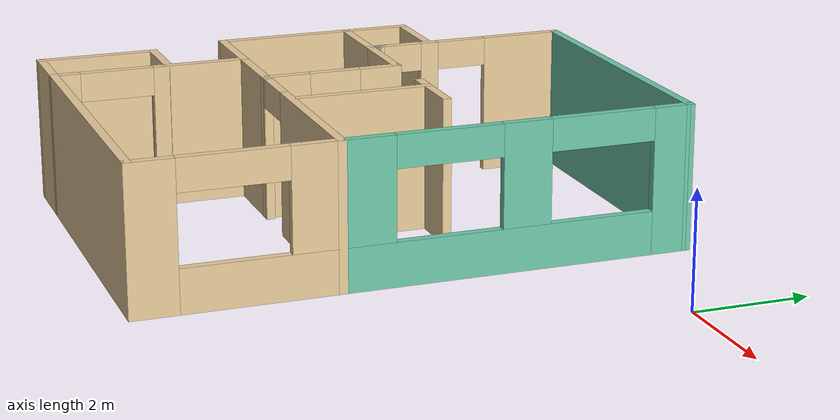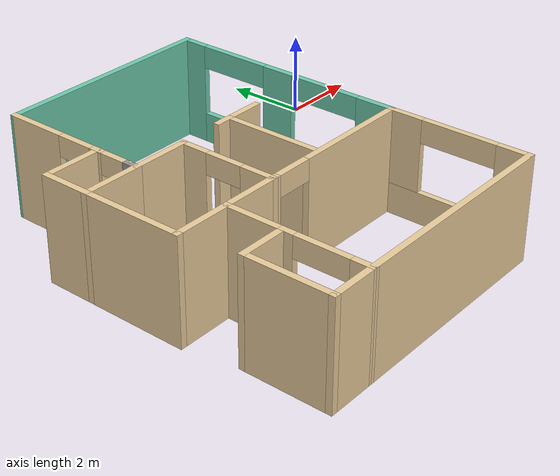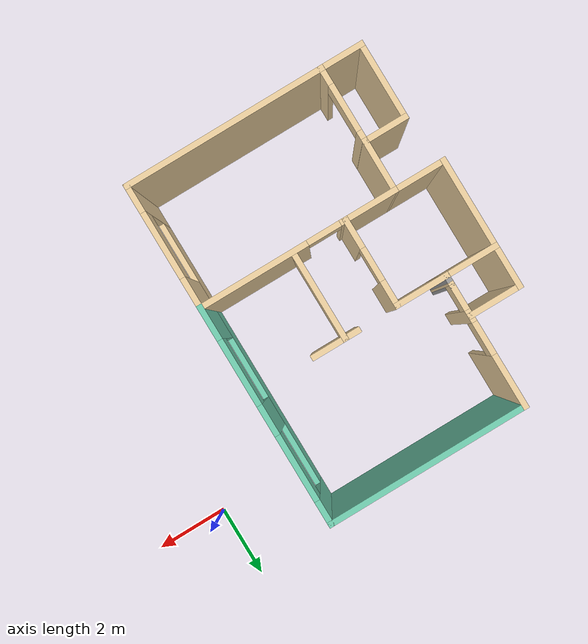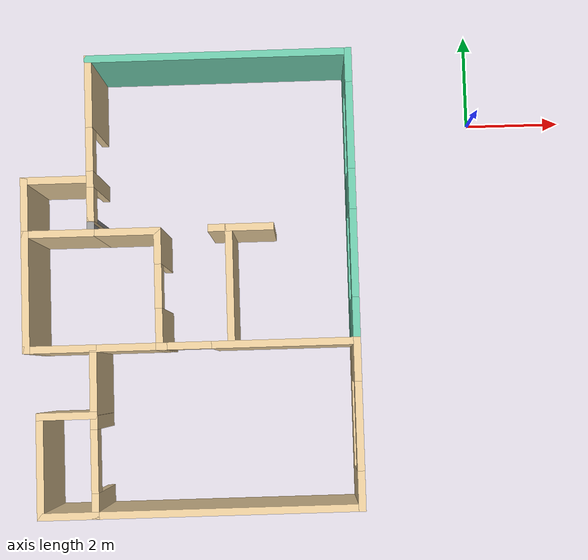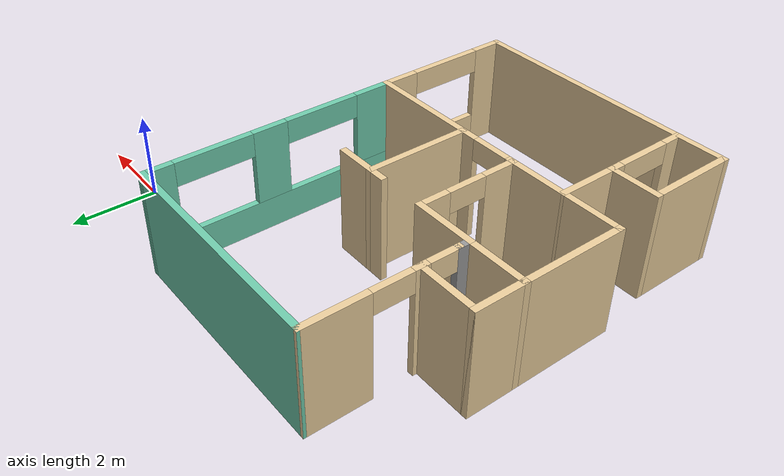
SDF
<?xml version='1.0'?>
<sdf version='1.6'>
  <model name='apt_1br'>
    <pose frame=''>-6.01929 -3.4268 0 0 -0 0</pose>
    <link name='Wall_10'>
      <collision name='Wall_10_Collision'>
        <geometry>
          <box>
            <size>5.5 0.15 2.5</size>
          </box>
        </geometry>
        <pose frame=''>0 0 1.25 0 -0 0</pose>
      </collision>
      <visual name='Wall_10_Visual'>
        <pose frame=''>0 0 1.25 0 -0 0</pose>
        <geometry>
          <box>
            <size>5.5 0.15 2.5</size>
          </box>
        </geometry>
        <material>
          <script>
            <uri>file://media/materials/scripts/gazebo.material</uri>
            <name>Gazebo/Grey</name>
          </script>
          <ambient>0.921569 0.807843 0.615686 1</ambient>
        </material>
        <meta>
          <layer>0</layer>
        </meta>
      </visual>
      <pose frame=''>0.674919 -4.65002 0 0 -0 3.14159</pose>
    </link>
    <link name='Wall_21'>
      <collision name='Wall_21_Collision'>
        <geometry>
          <box>
            <size>1.5 0.15 2.5</size>
          </box>
        </geometry>
        <pose frame=''>0 0 1.25 0 -0 0</pose>
      </collision>
      <visual name='Wall_21_Visual'>
        <pose frame=''>0 0 1.25 0 -0 0</pose>
        <geometry>
          <box>
            <size>1.5 0.15 2.5</size>
          </box>
        </geometry>
        <material>
          <script>
            <uri>file://media/materials/scripts/gazebo.material</uri>
            <name>Gazebo/Grey</name>
          </script>
          <ambient>0.921569 0.807843 0.615686 1</ambient>
        </material>
        <meta>
          <layer>0</layer>
        </meta>
      </visual>
      <pose frame=''>-1.32508 1.04998 0 0 -0 3.14159</pose>
    </link>
    <link name='Wall_29'>
      <pose frame=''>3.34992 1.67498 0 0 -0 -1.5708</pose>
      <visual name='Wall_29_Visual_0'>
        <pose frame=''>-2.69448 0 1.25 0 -0 0</pose>
        <geometry>
          <box>
            <size>0.71105 0.15 2.5</size>
          </box>
        </geometry>
        <material>
          <script>
            <uri>file://media/materials/scripts/gazebo.material</uri>
            <name>Gazebo/Grey</name>
          </script>
          <ambient>0.435294 0.796078 0.67451 1</ambient>
        </material>
        <meta>
          <layer>0</layer>
        </meta>
      </visual>
      <collision name='Wall_29_Collision_0'>
        <geometry>
          <box>
            <size>0.71105 0.15 2.5</size>
          </box>
        </geometry>
        <pose frame=''>-2.69448 0 1.25 0 -0 0</pose>
      </collision>
      <visual name='Wall_29_Visual_1'>
        <pose frame=''>0.355525 0 0.375 0 -0 0</pose>
        <geometry>
          <box>
            <size>5.38895 0.15 0.75</size>
          </box>
        </geometry>
        <material>
          <script>
            <uri>file://media/materials/scripts/gazebo.material</uri>
            <name>Gazebo/Grey</name>
          </script>
          <ambient>0.435294 0.796078 0.67451 1</ambient>
        </material>
        <meta>
          <layer>0</layer>
        </meta>
      </visual>
      <collision name='Wall_29_Collision_1'>
        <geometry>
          <box>
            <size>5.38895 0.15 0.75</size>
          </box>
        </geometry>
        <pose frame=''>0.355525 0 0.375 0 -0 0</pose>
      </collision>
      <visual name='Wall_29_Visual_2'>
        <pose frame=''>-0.124805 0 1.625 0 -0 0</pose>
        <geometry>
          <box>
            <size>0.82829 0.15 1.75</size>
          </box>
        </geometry>
        <material>
          <script>
            <uri>file://media/materials/scripts/gazebo.material</uri>
            <name>Gazebo/Grey</name>
          </script>
          <ambient>0.435294 0.796078 0.67451 1</ambient>
        </material>
        <meta>
          <layer>0</layer>
        </meta>
      </visual>
      <collision name='Wall_29_Collision_2'>
        <geometry>
          <box>
            <size>0.82829 0.15 1.75</size>
          </box>
        </geometry>
        <pose frame=''>-0.124805 0 1.625 0 -0 0</pose>
      </collision>
      <visual name='Wall_29_Visual_3'>
        <pose frame=''>2.56967 0 1.625 0 -0 0</pose>
        <geometry>
          <box>
            <size>0.96066 0.15 1.75</size>
          </box>
        </geometry>
        <material>
          <script>
            <uri>file://media/materials/scripts/gazebo.material</uri>
            <name>Gazebo/Grey</name>
          </script>
          <ambient>0.435294 0.796078 0.67451 1</ambient>
        </material>
        <meta>
          <layer>0</layer>
        </meta>
      </visual>
      <collision name='Wall_29_Collision_3'>
        <geometry>
          <box>
            <size>0.96066 0.15 1.75</size>
          </box>
        </geometry>
        <pose frame=''>2.56967 0 1.625 0 -0 0</pose>
      </collision>
      <visual name='Wall_29_Visual_4'>
        <pose frame=''>-1.43895 0 2.225 0 -0 0</pose>
        <geometry>
          <box>
            <size>1.8 0.15 0.55</size>
          </box>
        </geometry>
        <material>
          <script>
            <uri>file://media/materials/scripts/gazebo.material</uri>
            <name>Gazebo/Grey</name>
          </script>
          <ambient>0.435294 0.796078 0.67451 1</ambient>
        </material>
        <meta>
          <layer>0</layer>
        </meta>
      </visual>
      <collision name='Wall_29_Collision_4'>
        <geometry>
          <box>
            <size>1.8 0.15 0.55</size>
          </box>
        </geometry>
        <pose frame=''>-1.43895 0 2.225 0 -0 0</pose>
      </collision>
      <visual name='Wall_29_Visual_5'>
        <pose frame=''>1.18934 0 2.225 0 -0 0</pose>
        <geometry>
          <box>
            <size>1.8 0.15 0.55</size>
          </box>
        </geometry>
        <material>
          <script>
            <uri>file://media/materials/scripts/gazebo.material</uri>
            <name>Gazebo/Grey</name>
          </script>
          <ambient>0.435294 0.796078 0.67451 1</ambient>
        </material>
        <meta>
          <layer>0</layer>
        </meta>
      </visual>
      <collision name='Wall_29_Collision_5'>
        <geometry>
          <box>
            <size>1.8 0.15 0.55</size>
          </box>
        </geometry>
        <pose frame=''>1.18934 0 2.225 0 -0 0</pose>
      </collision>
    </link>
    <link name='Wall_31'>
      <pose frame=''>3.34992 -2.97502 0 0 -0 1.5708</pose>
      <visual name='Wall_31_Visual_0'>
        <pose frame=''>-1.34686 0 1.25 0 -0 0</pose>
        <geometry>
          <box>
            <size>0.806273 0.15 2.5</size>
          </box>
        </geometry>
        <material>
          <script>
            <uri>file://media/materials/scripts/gazebo.material</uri>
            <name>Gazebo/Grey</name>
          </script>
          <ambient>0.921569 0.807843 0.615686 1</ambient>
        </material>
        <meta>
          <layer>0</layer>
        </meta>
      </visual>
      <collision name='Wall_31_Collision_0'>
        <geometry>
          <box>
            <size>0.806273 0.15 2.5</size>
          </box>
        </geometry>
        <pose frame=''>-1.34686 0 1.25 0 -0 0</pose>
      </collision>
      <visual name='Wall_31_Visual_1'>
        <pose frame=''>0.403136 0 0.375 0 -0 0</pose>
        <geometry>
          <box>
            <size>2.69373 0.15 0.75</size>
          </box>
        </geometry>
        <material>
          <script>
            <uri>file://media/materials/scripts/gazebo.material</uri>
            <name>Gazebo/Grey</name>
          </script>
          <ambient>0.921569 0.807843 0.615686 1</ambient>
        </material>
        <meta>
          <layer>0</layer>
        </meta>
      </visual>
      <collision name='Wall_31_Collision_1'>
        <geometry>
          <box>
            <size>2.69373 0.15 0.75</size>
          </box>
        </geometry>
        <pose frame=''>0.403136 0 0.375 0 -0 0</pose>
      </collision>
      <visual name='Wall_31_Visual_2'>
        <pose frame=''>1.30314 0 1.625 0 -0 0</pose>
        <geometry>
          <box>
            <size>0.893727 0.15 1.75</size>
          </box>
        </geometry>
        <material>
          <script>
            <uri>file://media/materials/scripts/gazebo.material</uri>
            <name>Gazebo/Grey</name>
          </script>
          <ambient>0.921569 0.807843 0.615686 1</ambient>
        </material>
        <meta>
          <layer>0</layer>
        </meta>
      </visual>
      <collision name='Wall_31_Collision_2'>
        <geometry>
          <box>
            <size>0.893727 0.15 1.75</size>
          </box>
        </geometry>
        <pose frame=''>1.30314 0 1.625 0 -0 0</pose>
      </collision>
      <visual name='Wall_31_Visual_3'>
        <pose frame=''>-0.043727 0 2.225 0 -0 0</pose>
        <geometry>
          <box>
            <size>1.8 0.15 0.55</size>
          </box>
        </geometry>
        <material>
          <script>
            <uri>file://media/materials/scripts/gazebo.material</uri>
            <name>Gazebo/Grey</name>
          </script>
          <ambient>0.921569 0.807843 0.615686 1</ambient>
        </material>
        <meta>
          <layer>0</layer>
        </meta>
      </visual>
      <collision name='Wall_31_Collision_3'>
        <geometry>
          <box>
            <size>1.8 0.15 0.55</size>
          </box>
        </geometry>
        <pose frame=''>-0.043727 0 2.225 0 -0 0</pose>
      </collision>
    </link>
    <link name='Wall_33'>
      <pose frame=''>-0.650081 -0.125024 0 0 -0 -1.5708</pose>
      <visual name='Wall_33_Visual_0'>
        <pose frame=''>-0.874194 0 1.25 0 -0 0</pose>
        <geometry>
          <box>
            <size>0.751611 0.15 2.5</size>
          </box>
        </geometry>
        <material>
          <script>
            <uri>file://media/materials/scripts/gazebo.material</uri>
            <name>Gazebo/Grey</name>
          </script>
          <ambient>0.921569 0.807843 0.615686 1</ambient>
        </material>
        <meta>
          <layer>0</layer>
        </meta>
      </visual>
      <collision name='Wall_33_Collision_0'>
        <geometry>
          <box>
            <size>0.751611 0.15 2.5</size>
          </box>
        </geometry>
        <pose frame=''>-0.874194 0 1.25 0 -0 0</pose>
      </collision>
      <visual name='Wall_33_Visual_1'>
        <pose frame=''>0.825806 0 1.25 0 -0 0</pose>
        <geometry>
          <box>
            <size>0.848389 0.15 2.5</size>
          </box>
        </geometry>
        <material>
          <script>
            <uri>file://media/materials/scripts/gazebo.material</uri>
            <name>Gazebo/Grey</name>
          </script>
          <ambient>0.921569 0.807843 0.615686 1</ambient>
        </material>
        <meta>
          <layer>0</layer>
        </meta>
      </visual>
      <collision name='Wall_33_Collision_1'>
        <geometry>
          <box>
            <size>0.848389 0.15 2.5</size>
          </box>
        </geometry>
        <pose frame=''>0.825806 0 1.25 0 -0 0</pose>
      </collision>
      <visual name='Wall_33_Visual_2'>
        <pose frame=''>-0.048389 0 2.25 0 -0 0</pose>
        <geometry>
          <box>
            <size>0.9 0.15 0.5</size>
          </box>
        </geometry>
        <material>
          <script>
            <uri>file://media/materials/scripts/gazebo.material</uri>
            <name>Gazebo/Grey</name>
          </script>
          <ambient>0.921569 0.807843 0.615686 1</ambient>
        </material>
        <meta>
          <layer>0</layer>
        </meta>
      </visual>
      <collision name='Wall_33_Collision_2'>
        <geometry>
          <box>
            <size>0.9 0.15 0.5</size>
          </box>
        </geometry>
        <pose frame=''>-0.048389 0 2.25 0 -0 0</pose>
      </collision>
    </link>
    <link name='Wall_34'>
      <collision name='Wall_34_Collision'>
        <geometry>
          <box>
            <size>1.5 0.15 2.5</size>
          </box>
        </geometry>
        <pose frame=''>0 0 1.25 0 -0 0</pose>
      </collision>
      <visual name='Wall_34_Visual'>
        <pose frame=''>0 0 1.25 0 -0 0</pose>
        <geometry>
          <box>
            <size>1.5 0.15 2.5</size>
          </box>
        </geometry>
        <material>
          <script>
            <uri>file://media/materials/scripts/gazebo.material</uri>
            <name>Gazebo/Grey</name>
          </script>
          <ambient>0.921569 0.807843 0.615686 1</ambient>
        </material>
        <meta>
          <layer>0</layer>
        </meta>
      </visual>
      <pose frame=''>-1.32508 -1.30002 0 0 -0 3.14159</pose>
    </link>
    <link name='Wall_36'>
      <pose frame=''>1.34992 -1.30002 0 0 -0 0</pose>
      <visual name='Wall_36_Visual_0'>
        <pose frame=''>-1.96133 0 1.25 0 -0 0</pose>
        <geometry>
          <box>
            <size>0.227341 0.15 2.5</size>
          </box>
        </geometry>
        <material>
          <script>
            <uri>file://media/materials/scripts/gazebo.material</uri>
            <name>Gazebo/Grey</name>
          </script>
          <ambient>0.921569 0.807843 0.615686 1</ambient>
        </material>
        <meta>
          <layer>0</layer>
        </meta>
      </visual>
      <collision name='Wall_36_Collision_0'>
        <geometry>
          <box>
            <size>0.227341 0.15 2.5</size>
          </box>
        </geometry>
        <pose frame=''>-1.96133 0 1.25 0 -0 0</pose>
      </collision>
      <visual name='Wall_36_Visual_1'>
        <pose frame=''>0.56367 0 1.25 0 -0 0</pose>
        <geometry>
          <box>
            <size>3.02266 0.15 2.5</size>
          </box>
        </geometry>
        <material>
          <script>
            <uri>file://media/materials/scripts/gazebo.material</uri>
            <name>Gazebo/Grey</name>
          </script>
          <ambient>0.921569 0.807843 0.615686 1</ambient>
        </material>
        <meta>
          <layer>0</layer>
        </meta>
      </visual>
      <collision name='Wall_36_Collision_1'>
        <geometry>
          <box>
            <size>3.02266 0.15 2.5</size>
          </box>
        </geometry>
        <pose frame=''>0.56367 0 1.25 0 -0 0</pose>
      </collision>
      <visual name='Wall_36_Visual_2'>
        <pose frame=''>-1.39766 0 2.25 0 -0 0</pose>
        <geometry>
          <box>
            <size>0.9 0.15 0.5</size>
          </box>
        </geometry>
        <material>
          <script>
            <uri>file://media/materials/scripts/gazebo.material</uri>
            <name>Gazebo/Grey</name>
          </script>
          <ambient>0.921569 0.807843 0.615686 1</ambient>
        </material>
        <meta>
          <layer>0</layer>
        </meta>
      </visual>
      <collision name='Wall_36_Collision_2'>
        <geometry>
          <box>
            <size>0.9 0.15 0.5</size>
          </box>
        </geometry>
        <pose frame=''>-1.39766 0 2.25 0 -0 0</pose>
      </collision>
    </link>
    <link name='Wall_38'>
      <collision name='Wall_38_Collision'>
        <geometry>
          <box>
            <size>2.5 0.15 2.5</size>
          </box>
        </geometry>
        <pose frame=''>0 0 1.25 0 -0 0</pose>
      </collision>
      <visual name='Wall_38_Visual'>
        <pose frame=''>0 0 1.25 0 -0 0</pose>
        <geometry>
          <box>
            <size>2.5 0.15 2.5</size>
          </box>
        </geometry>
        <material>
          <script>
            <uri>file://media/materials/scripts/gazebo.material</uri>
            <name>Gazebo/Grey</name>
          </script>
          <ambient>0.921569 0.807843 0.615686 1</ambient>
        </material>
        <meta>
          <layer>0</layer>
        </meta>
      </visual>
      <pose frame=''>0.806186 -0.096149 0 0 -0 1.5708</pose>
    </link>
    <link name='Wall_41'>
      <collision name='Wall_41_Collision'>
        <geometry>
          <box>
            <size>1 0.15 2.5</size>
          </box>
        </geometry>
        <pose frame=''>0 0 1.25 0 -0 0</pose>
      </collision>
      <visual name='Wall_41_Visual'>
        <pose frame=''>0 0 1.25 0 -0 0</pose>
        <geometry>
          <box>
            <size>1 0.15 2.5</size>
          </box>
        </geometry>
        <material>
          <script>
            <uri>file://media/materials/scripts/gazebo.material</uri>
            <name>Gazebo/Grey</name>
          </script>
          <ambient>0.921569 0.807843 0.615686 1</ambient>
        </material>
        <meta>
          <layer>0</layer>
        </meta>
      </visual>
      <pose frame=''>1.23119 1.07885 0 0 -0 0</pose>
    </link>
    <link name='Wall_43'>
      <collision name='Wall_43_Collision'>
        <geometry>
          <box>
            <size>0.5 0.15 2.5</size>
          </box>
        </geometry>
        <pose frame=''>0 0 1.25 0 -0 0</pose>
      </collision>
      <visual name='Wall_43_Visual'>
        <pose frame=''>0 0 1.25 0 -0 0</pose>
        <geometry>
          <box>
            <size>0.5 0.15 2.5</size>
          </box>
        </geometry>
        <material>
          <script>
            <uri>file://media/materials/scripts/gazebo.material</uri>
            <name>Gazebo/Grey</name>
          </script>
          <ambient>0.921569 0.807843 0.615686 1</ambient>
        </material>
        <meta>
          <layer>0</layer>
        </meta>
      </visual>
      <pose frame=''>0.631186 1.07885 0 0 -0 3.14159</pose>
    </link>
    <link name='Wall_5'>
      <pose frame=''>-2.00008 2.96898 0 0 -0 1.5708</pose>
      <visual name='Wall_5_Visual_0'>
        <pose frame=''>-1.71167 0 1.25 0 -0 0</pose>
        <geometry>
          <box>
            <size>0.064664 0.15 2.5</size>
          </box>
        </geometry>
        <material>
          <script>
            <uri>file://media/materials/scripts/gazebo.material</uri>
            <name>Gazebo/Grey</name>
          </script>
          <ambient>0.921569 0.807843 0.615686 1</ambient>
        </material>
        <meta>
          <layer>0</layer>
        </meta>
      </visual>
      <collision name='Wall_5_Collision_0'>
        <geometry>
          <box>
            <size>0.064664 0.15 2.5</size>
          </box>
        </geometry>
        <pose frame=''>-1.71167 0 1.25 0 -0 0</pose>
      </collision>
      <visual name='Wall_5_Visual_1'>
        <pose frame=''>-0.81386 0 1.25 0 -0 0</pose>
        <geometry>
          <box>
            <size>0.330951 0.15 2.5</size>
          </box>
        </geometry>
        <material>
          <script>
            <uri>file://media/materials/scripts/gazebo.material</uri>
            <name>Gazebo/Grey</name>
          </script>
          <ambient>0.921569 0.807843 0.615686 1</ambient>
        </material>
        <meta>
          <layer>0</layer>
        </meta>
      </visual>
      <collision name='Wall_5_Collision_1'>
        <geometry>
          <box>
            <size>0.330951 0.15 2.5</size>
          </box>
        </geometry>
        <pose frame=''>-0.81386 0 1.25 0 -0 0</pose>
      </collision>
      <visual name='Wall_5_Visual_2'>
        <pose frame=''>0.997808 0 1.25 0 -0 0</pose>
        <geometry>
          <box>
            <size>1.49239 0.15 2.5</size>
          </box>
        </geometry>
        <material>
          <script>
            <uri>file://media/materials/scripts/gazebo.material</uri>
            <name>Gazebo/Grey</name>
          </script>
          <ambient>0.921569 0.807843 0.615686 1</ambient>
        </material>
        <meta>
          <layer>0</layer>
        </meta>
      </visual>
      <collision name='Wall_5_Collision_2'>
        <geometry>
          <box>
            <size>1.49239 0.15 2.5</size>
          </box>
        </geometry>
        <pose frame=''>0.997808 0 1.25 0 -0 0</pose>
      </collision>
      <visual name='Wall_5_Visual_3'>
        <pose frame=''>-1.32934 0 2.25 0 -0 0</pose>
        <geometry>
          <box>
            <size>0.7 0.15 0.5</size>
          </box>
        </geometry>
        <material>
          <script>
            <uri>file://media/materials/scripts/gazebo.material</uri>
            <name>Gazebo/Grey</name>
          </script>
          <ambient>0.921569 0.807843 0.615686 1</ambient>
        </material>
        <meta>
          <layer>0</layer>
        </meta>
      </visual>
      <collision name='Wall_5_Collision_3'>
        <geometry>
          <box>
            <size>0.7 0.15 0.5</size>
          </box>
        </geometry>
        <pose frame=''>-1.32934 0 2.25 0 -0 0</pose>
      </collision>
      <visual name='Wall_5_Visual_4'>
        <pose frame=''>-0.198385 0 2.25 0 -0 0</pose>
        <geometry>
          <box>
            <size>0.9 0.15 0.5</size>
          </box>
        </geometry>
        <material>
          <script>
            <uri>file://media/materials/scripts/gazebo.material</uri>
            <name>Gazebo/Grey</name>
          </script>
          <ambient>0.921569 0.807843 0.615686 1</ambient>
        </material>
        <meta>
          <layer>0</layer>
        </meta>
      </visual>
      <collision name='Wall_5_Collision_4'>
        <geometry>
          <box>
            <size>0.9 0.15 0.5</size>
          </box>
        </geometry>
        <pose frame=''>-0.198385 0 2.25 0 -0 0</pose>
      </collision>
    </link>
    <link name='Wall_54'>
      <collision name='Wall_54_Collision'>
        <geometry>
          <box>
            <size>1.5 0.15 2.5</size>
          </box>
        </geometry>
        <pose frame=''>0 0 1.25 0 -0 0</pose>
      </collision>
      <visual name='Wall_54_Visual'>
        <pose frame=''>0 0 1.25 0 -0 0</pose>
        <geometry>
          <box>
            <size>1.5 0.15 2.5</size>
          </box>
        </geometry>
        <material>
          <script>
            <uri>file://media/materials/scripts/gazebo.material</uri>
            <name>Gazebo/Grey</name>
          </script>
          <ambient>0.921569 0.807843 0.615686 1</ambient>
        </material>
        <meta>
          <layer>0</layer>
        </meta>
      </visual>
      <pose frame=''>-2.67508 1.04998 0 0 -0 3.14159</pose>
    </link>
    <link name='Wall_55'>
      <collision name='Wall_55_Collision'>
        <geometry>
          <box>
            <size>2.5 0.15 2.5</size>
          </box>
        </geometry>
        <pose frame=''>0 0 1.25 0 -0 0</pose>
      </collision>
      <visual name='Wall_55_Visual'>
        <pose frame=''>0 0 1.25 0 -0 0</pose>
        <geometry>
          <box>
            <size>2.5 0.15 2.5</size>
          </box>
        </geometry>
        <material>
          <script>
            <uri>file://media/materials/scripts/gazebo.material</uri>
            <name>Gazebo/Grey</name>
          </script>
          <ambient>0.921569 0.807843 0.615686 1</ambient>
        </material>
        <meta>
          <layer>0</layer>
        </meta>
      </visual>
      <pose frame=''>-3.35008 -0.125024 0 0 -0 -1.5708</pose>
    </link>
    <link name='Wall_56'>
      <collision name='Wall_56_Collision'>
        <geometry>
          <box>
            <size>1.5 0.15 2.5</size>
          </box>
        </geometry>
        <pose frame=''>0 0 1.25 0 -0 0</pose>
      </collision>
      <visual name='Wall_56_Visual'>
        <pose frame=''>0 0 1.25 0 -0 0</pose>
        <geometry>
          <box>
            <size>1.5 0.15 2.5</size>
          </box>
        </geometry>
        <material>
          <script>
            <uri>file://media/materials/scripts/gazebo.material</uri>
            <name>Gazebo/Grey</name>
          </script>
          <ambient>0.921569 0.807843 0.615686 1</ambient>
        </material>
        <meta>
          <layer>0</layer>
        </meta>
      </visual>
      <pose frame=''>-2.67508 -1.30002 0 0 -0 0</pose>
    </link>
    <link name='Wall_57'>
      <collision name='Wall_57_Collision'>
        <geometry>
          <box>
            <size>1.5 0.15 2.5</size>
          </box>
        </geometry>
        <pose frame=''>0 0 1.25 0 -0 0</pose>
      </collision>
      <visual name='Wall_57_Visual'>
        <pose frame=''>0 0 1.25 0 -0 0</pose>
        <geometry>
          <box>
            <size>1.5 0.15 2.5</size>
          </box>
        </geometry>
        <material>
          <script>
            <uri>file://media/materials/scripts/gazebo.material</uri>
            <name>Gazebo/Grey</name>
          </script>
          <ambient>0.921569 0.807843 0.615686 1</ambient>
        </material>
        <meta>
          <layer>0</layer>
        </meta>
      </visual>
      <pose frame=''>-2.0017 -1.97502 0 0 -0 -1.57319</pose>
    </link>
    <link name='Wall_58'>
      <collision name='Wall_58_Collision'>
        <geometry>
          <box>
            <size>1.247 0.15 2.5</size>
          </box>
        </geometry>
        <pose frame=''>0 0 1.25 0 -0 0</pose>
      </collision>
      <visual name='Wall_58_Visual'>
        <pose frame=''>0 0 1.25 0 -0 0</pose>
        <geometry>
          <box>
            <size>1.247 0.15 2.5</size>
          </box>
        </geometry>
        <material>
          <script>
            <uri>file://media/materials/scripts/gazebo.material</uri>
            <name>Gazebo/Grey</name>
          </script>
          <ambient>0.921569 0.807843 0.615686 1</ambient>
        </material>
        <meta>
          <layer>0</layer>
        </meta>
      </visual>
      <pose frame=''>-2.55181 -2.65002 0 0 -0 3.14159</pose>
    </link>
    <link name='Wall_6'>
      <collision name='Wall_6_Collision'>
        <geometry>
          <box>
            <size>5.5 0.15 2.5</size>
          </box>
        </geometry>
        <pose frame=''>0 0 1.25 0 -0 0</pose>
      </collision>
      <visual name='Wall_6_Visual'>
        <pose frame=''>0 0 1.25 0 -0 0</pose>
        <geometry>
          <box>
            <size>5.5 0.15 2.5</size>
          </box>
        </geometry>
        <material>
          <script>
            <uri>file://media/materials/scripts/gazebo.material</uri>
            <name>Gazebo/Grey</name>
          </script>
          <ambient>0.435294 0.796078 0.67451 1</ambient>
        </material>
        <meta>
          <layer>0</layer>
        </meta>
      </visual>
      <pose frame=''>0.674919 4.64398 0 0 -0 0.002243</pose>
    </link>
    <link name='Wall_62'>
      <collision name='Wall_62_Collision'>
        <geometry>
          <box>
            <size>1.25 0.15 2.5</size>
          </box>
        </geometry>
        <pose frame=''>0 0 1.25 0 -0 0</pose>
      </collision>
      <visual name='Wall_62_Visual'>
        <pose frame=''>0 0 1.25 0 -0 0</pose>
        <geometry>
          <box>
            <size>1.25 0.15 2.5</size>
          </box>
        </geometry>
        <material>
          <script>
            <uri>file://media/materials/scripts/gazebo.material</uri>
            <name>Gazebo/Grey</name>
          </script>
          <ambient>0.921569 0.807843 0.615686 1</ambient>
        </material>
        <meta>
          <layer>0</layer>
        </meta>
      </visual>
      <pose frame=''>-2.55008 -4.65002 0 0 -0 3.14159</pose>
    </link>
    <link name='Wall_63'>
      <collision name='Wall_63_Collision'>
        <geometry>
          <box>
            <size>2 0.15 2.5</size>
          </box>
        </geometry>
        <pose frame=''>0 0 1.25 0 -0 0</pose>
      </collision>
      <visual name='Wall_63_Visual'>
        <pose frame=''>0 0 1.25 0 -0 0</pose>
        <geometry>
          <box>
            <size>2 0.15 2.5</size>
          </box>
        </geometry>
        <material>
          <script>
            <uri>file://media/materials/scripts/gazebo.material</uri>
            <name>Gazebo/Grey</name>
          </script>
          <ambient>0.921569 0.807843 0.615686 1</ambient>
        </material>
        <meta>
          <layer>0</layer>
        </meta>
      </visual>
      <pose frame=''>-3.10008 -3.72502 0 0 -0 1.5708</pose>
    </link>
    <link name='Wall_65'>
      <pose frame=''>-2.0017 -3.65002 0 0 -0 -1.56918</pose>
      <visual name='Wall_65_Visual_0'>
        <pose frame=''>-0.895757 0 1.25 0 -0 0</pose>
        <geometry>
          <box>
            <size>0.358489 0.15 2.5</size>
          </box>
        </geometry>
        <material>
          <script>
            <uri>file://media/materials/scripts/gazebo.material</uri>
            <name>Gazebo/Grey</name>
          </script>
          <ambient>0.921569 0.807843 0.615686 1</ambient>
        </material>
        <meta>
          <layer>0</layer>
        </meta>
      </visual>
      <collision name='Wall_65_Collision_0'>
        <geometry>
          <box>
            <size>0.358489 0.15 2.5</size>
          </box>
        </geometry>
        <pose frame=''>-0.895757 0 1.25 0 -0 0</pose>
      </collision>
      <visual name='Wall_65_Visual_1'>
        <pose frame=''>0.815925 0 1.25 0 -0 0</pose>
        <geometry>
          <box>
            <size>0.518152 0.15 2.5</size>
          </box>
        </geometry>
        <material>
          <script>
            <uri>file://media/materials/scripts/gazebo.material</uri>
            <name>Gazebo/Grey</name>
          </script>
          <ambient>0.921569 0.807843 0.615686 1</ambient>
        </material>
        <meta>
          <layer>0</layer>
        </meta>
      </visual>
      <collision name='Wall_65_Collision_1'>
        <geometry>
          <box>
            <size>0.518152 0.15 2.5</size>
          </box>
        </geometry>
        <pose frame=''>0.815925 0 1.25 0 -0 0</pose>
      </collision>
      <visual name='Wall_65_Visual_2'>
        <pose frame=''>-0.079832 0 2.25 0 -0 0</pose>
        <geometry>
          <box>
            <size>1.27336 0.15 0.5</size>
          </box>
        </geometry>
        <material>
          <script>
            <uri>file://media/materials/scripts/gazebo.material</uri>
            <name>Gazebo/Grey</name>
          </script>
          <ambient>0.921569 0.807843 0.615686 1</ambient>
        </material>
        <meta>
          <layer>0</layer>
        </meta>
      </visual>
      <collision name='Wall_65_Collision_2'>
        <geometry>
          <box>
            <size>1.27336 0.15 0.5</size>
          </box>
        </geometry>
        <pose frame=''>-0.079832 0 2.25 0 -0 0</pose>
      </collision>
    </link>
    <link name='Wall_70'>
      <collision name='Wall_70_Collision'>
        <geometry>
          <box>
            <size>1.25 0.15 2.5</size>
          </box>
        </geometry>
        <pose frame=''>0 0 1.25 0 -0 0</pose>
      </collision>
      <visual name='Wall_70_Visual'>
        <pose frame=''>0 0 1.25 0 -0 0</pose>
        <geometry>
          <box>
            <size>1.25 0.15 2.5</size>
          </box>
        </geometry>
        <material>
          <script>
            <uri>file://media/materials/scripts/gazebo.material</uri>
            <name>Gazebo/Grey</name>
          </script>
          <ambient>0.921569 0.807843 0.615686 1</ambient>
        </material>
        <meta>
          <layer>0</layer>
        </meta>
      </visual>
      <pose frame=''>-3.35008 1.59998 0 0 -0 1.5708</pose>
    </link>
    <link name='Wall_71'>
      <collision name='Wall_71_Collision'>
        <geometry>
          <box>
            <size>1.5 0.15 2.5</size>
          </box>
        </geometry>
        <pose frame=''>0 0 1.25 0 -0 0</pose>
      </collision>
      <visual name='Wall_71_Visual'>
        <pose frame=''>0 0 1.25 0 -0 0</pose>
        <geometry>
          <box>
            <size>1.5 0.15 2.5</size>
          </box>
        </geometry>
        <material>
          <script>
            <uri>file://media/materials/scripts/gazebo.material</uri>
            <name>Gazebo/Grey</name>
          </script>
          <ambient>0.921569 0.807843 0.615686 1</ambient>
        </material>
        <meta>
          <layer>0</layer>
        </meta>
      </visual>
      <pose frame=''>-2.67508 2.14998 0 0 -0 0</pose>
    </link>
    <link name='Wall_73'>
      <collision name='Wall_73_Collision'>
        <geometry>
          <box>
            <size>0.4 0.15 2.5</size>
          </box>
        </geometry>
        <pose frame=''>0 0 1.25 0 -0 0</pose>
      </collision>
      <visual name='Wall_73_Visual'>
        <pose frame=''>0 0 1.25 0 -0 0</pose>
        <geometry>
          <box>
            <size>0.4 0.15 2.5</size>
          </box>
        </geometry>
        <material>
          <script>
            <uri>file://media/materials/scripts/gazebo.material</uri>
            <name>Gazebo/Grey</name>
          </script>
          <ambient>1 1 1 1</ambient>
        </material>
        <meta>
          <layer>0</layer>
        </meta>
      </visual>
      <pose frame=''>-2.00008 1.17498 0 0 -0 1.5708</pose>
    </link>
    <static>1</static>
  </model>
</sdf>
